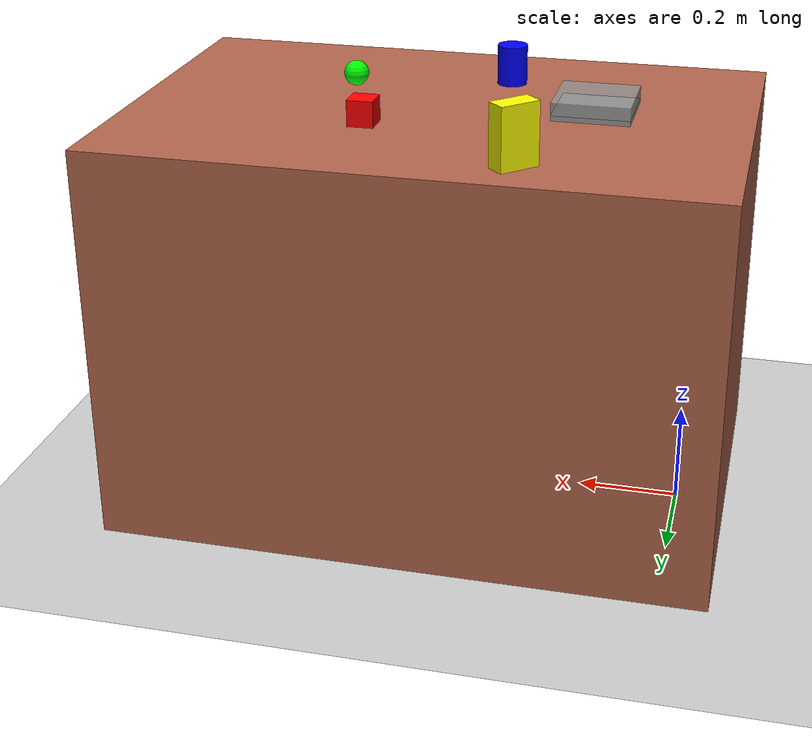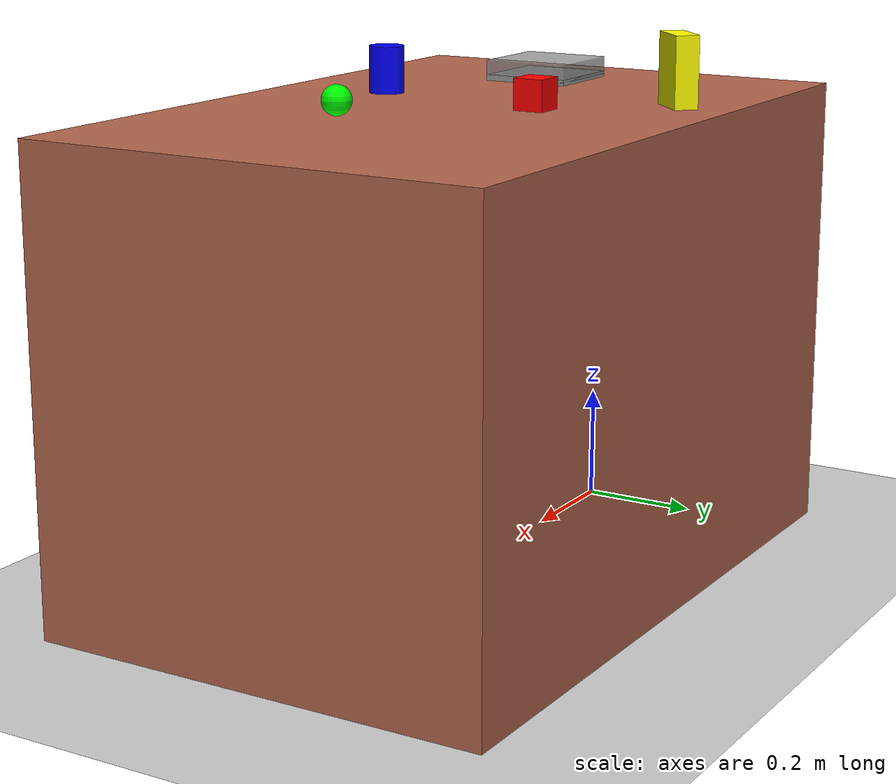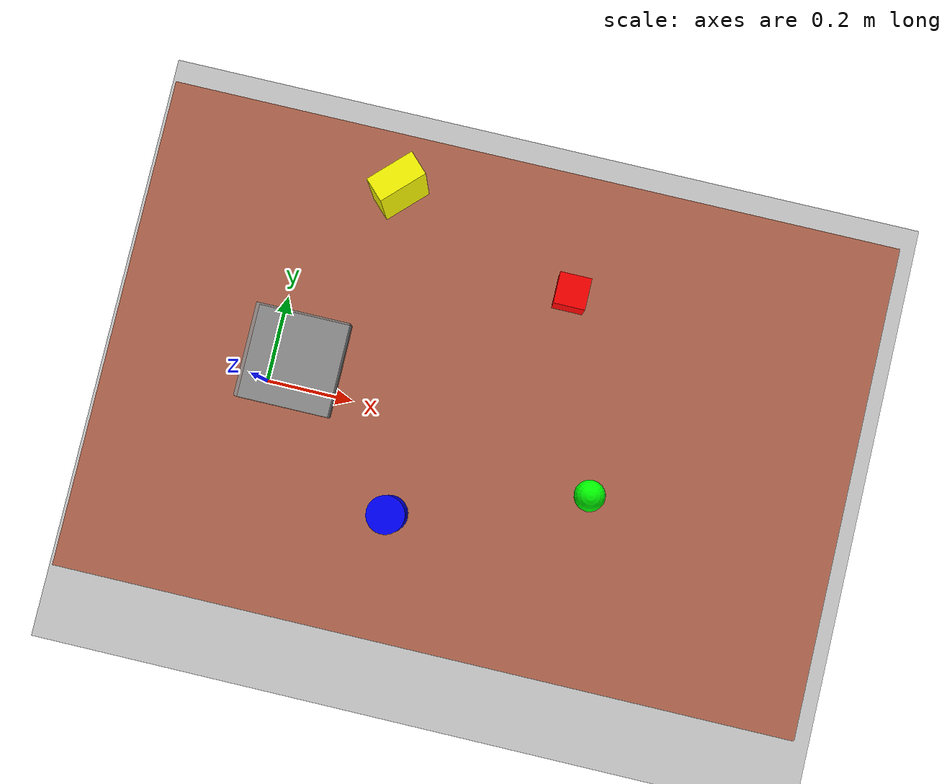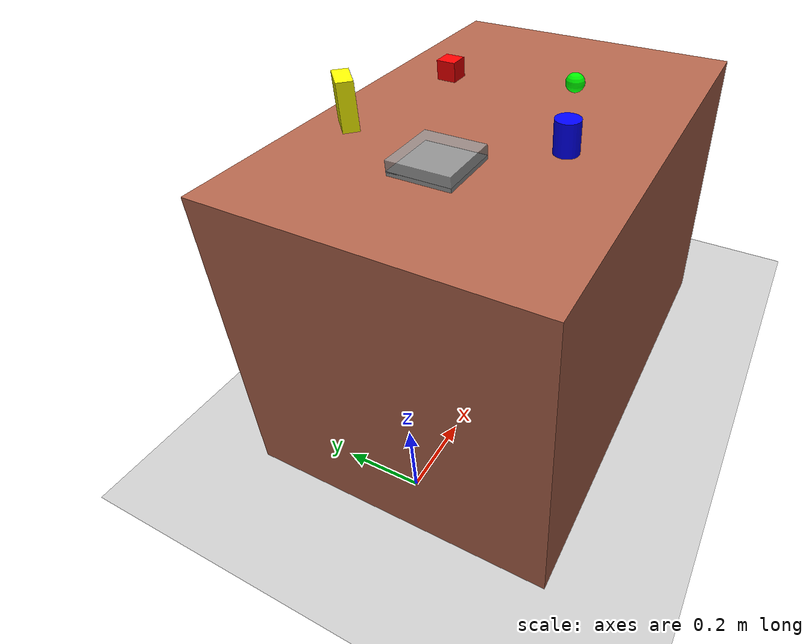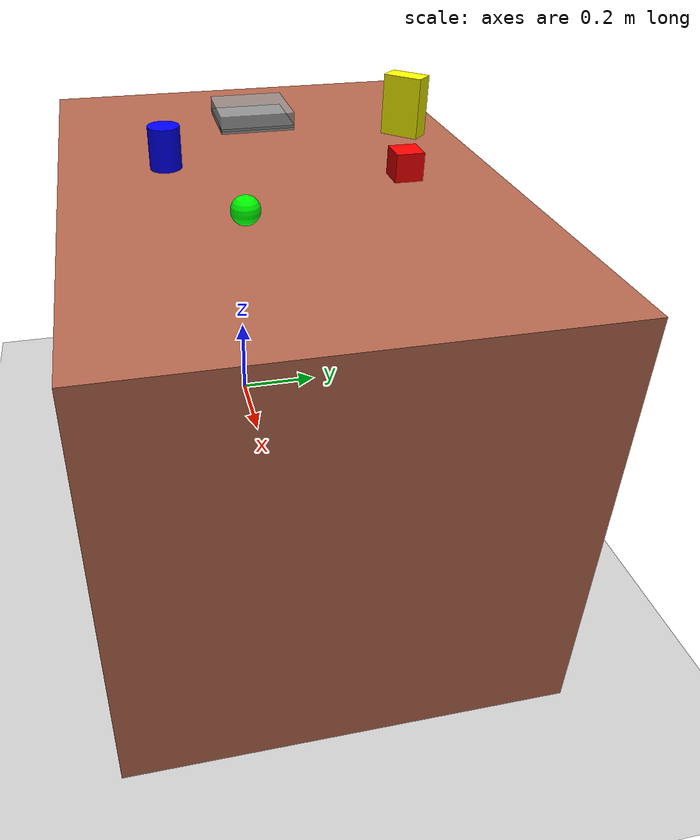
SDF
<?xml version="1.0" ?>
<sdf version="1.9">
  <world name="arm_workspace">
    <!-- Physics settings -->
    <physics name="1ms" type="ignored">
      <max_step_size>0.001</max_step_size>
      <real_time_factor>1.0</real_time_factor>
    </physics>

    <!-- Scene settings -->
    <scene>
      <ambient>0.4 0.4 0.4 1.0</ambient>
      <background>0.7 0.7 0.7 1.0</background>
      <shadows>true</shadows>
    </scene>

    <!-- Sun light -->
    <light name="sun" type="directional">
      <pose>0 0 10 0 0 0</pose>
      <cast_shadows>true</cast_shadows>
      <intensity>1.0</intensity>
      <direction>-0.5 0.1 -0.9</direction>
      <diffuse>0.8 0.8 0.8 1</diffuse>
      <specular>0.2 0.2 0.2 1</specular>
    </light>

    <!-- Ground plane -->
    <model name="ground_plane">
      <static>true</static>
      <link name="link">
        <collision name="collision">
          <geometry>
            <plane>
              <normal>0 0 1</normal>
              <size>100 100</size>
            </plane>
          </geometry>
        </collision>
        <visual name="visual">
          <geometry>
            <plane>
              <normal>0 0 1</normal>
              <size>100 100</size>
            </plane>
          </geometry>
          <material>
            <ambient>0.8 0.8 0.8 1</ambient>
            <diffuse>0.8 0.8 0.8 1</diffuse>
            <specular>0.8 0.8 0.8 1</specular>
          </material>
        </visual>
      </link>
    </model>

    <!-- Work table -->
    <model name="work_table">
      <pose>0.5 0 0.4 0 0 0</pose>
      <static>true</static>
      <link name="link">
        <collision name="collision">
          <geometry>
            <box>
              <size>1.2 0.8 0.8</size>
            </box>
          </geometry>
        </collision>
        <visual name="visual">
          <geometry>
            <box>
              <size>1.2 0.8 0.8</size>
            </box>
          </geometry>
          <material>
            <ambient>0.5 0.3 0.2 1</ambient>
            <diffuse>0.7 0.4 0.3 1</diffuse>
          </material>
        </visual>
      </link>
    </model>

    <!-- Red box target object -->
    <model name="red_box">
      <pose>0.6 0.2 0.85 0 0 0</pose>
      <link name="link">
        <inertial>
          <mass>0.1</mass>
          <inertia>
            <ixx>0.0001</ixx>
            <iyy>0.0001</iyy>
            <izz>0.0001</izz>
          </inertia>
        </inertial>
        <collision name="collision">
          <geometry>
            <box>
              <size>0.05 0.05 0.05</size>
            </box>
          </geometry>
        </collision>
        <visual name="visual">
          <geometry>
            <box>
              <size>0.05 0.05 0.05</size>
            </box>
          </geometry>
          <material>
            <ambient>0.8 0.0 0.0 1</ambient>
            <diffuse>1.0 0.0 0.0 1</diffuse>
          </material>
        </visual>
      </link>
    </model>

    <!-- Blue cylinder target object -->
    <model name="blue_cylinder">
      <pose>0.4 -0.2 0.84 0 0 0</pose>
      <link name="link">
        <inertial>
          <mass>0.15</mass>
          <inertia>
            <ixx>0.0002</ixx>
            <iyy>0.0002</iyy>
            <izz>0.0001</izz>
          </inertia>
        </inertial>
        <collision name="collision">
          <geometry>
            <cylinder>
              <radius>0.03</radius>
              <length>0.08</length>
            </cylinder>
          </geometry>
        </collision>
        <visual name="visual">
          <geometry>
            <cylinder>
              <radius>0.03</radius>
              <length>0.08</length>
            </cylinder>
          </geometry>
          <material>
            <ambient>0.0 0.0 0.8 1</ambient>
            <diffuse>0.0 0.0 1.0 1</diffuse>
          </material>
        </visual>
      </link>
    </model>

    <!-- Green sphere target object -->
    <model name="green_sphere">
      <pose>0.7 -0.1 0.83 0 0 0</pose>
      <link name="link">
        <inertial>
          <mass>0.08</mass>
          <inertia>
            <ixx>0.00008</ixx>
            <iyy>0.00008</iyy>
            <izz>0.00008</izz>
          </inertia>
        </inertial>
        <collision name="collision">
          <geometry>
            <sphere>
              <radius>0.025</radius>
            </sphere>
          </geometry>
        </collision>
        <visual name="visual">
          <geometry>
            <sphere>
              <radius>0.025</radius>
            </sphere>
          </geometry>
          <material>
            <ambient>0.0 0.8 0.0 1</ambient>
            <diffuse>0.0 1.0 0.0 1</diffuse>
          </material>
        </visual>
      </link>
    </model>

    <!-- Yellow box obstacle -->
    <model name="yellow_obstacle">
      <pose>0.3 0.3 0.86 0 0 0.785</pose>
      <link name="link">
        <inertial>
          <mass>0.2</mass>
          <inertia>
            <ixx>0.0003</ixx>
            <iyy>0.0003</iyy>
            <izz>0.0001</izz>
          </inertia>
        </inertial>
        <collision name="collision">
          <geometry>
            <box>
              <size>0.08 0.04 0.12</size>
            </box>
          </geometry>
        </collision>
        <visual name="visual">
          <geometry>
            <box>
              <size>0.08 0.04 0.12</size>
            </box>
          </geometry>
          <material>
            <ambient>0.8 0.8 0.0 1</ambient>
            <diffuse>1.0 1.0 0.0 1</diffuse>
          </material>
        </visual>
      </link>
    </model>

    <!-- Container/tray for objects -->
    <model name="container_tray">
      <pose>0.2 0 0.82 0 0 0</pose>
      <static>true</static>
      <link name="link">
        <collision name="bottom">
          <pose>0 0 0 0 0 0</pose>
          <geometry>
            <box>
              <size>0.15 0.15 0.01</size>
            </box>
          </geometry>
        </collision>
        <collision name="wall1">
          <pose>0.07 0 0.015 0 0 0</pose>
          <geometry>
            <box>
              <size>0.01 0.15 0.03</size>
            </box>
          </geometry>
        </collision>
        <collision name="wall2">
          <pose>-0.07 0 0.015 0 0 0</pose>
          <geometry>
            <box>
              <size>0.01 0.15 0.03</size>
            </box>
          </geometry>
        </collision>
        <collision name="wall3">
          <pose>0 0.07 0.015 0 0 0</pose>
          <geometry>
            <box>
              <size>0.15 0.01 0.03</size>
            </box>
          </geometry>
        </collision>
        <collision name="wall4">
          <pose>0 -0.07 0.015 0 0 0</pose>
          <geometry>
            <box>
              <size>0.15 0.01 0.03</size>
            </box>
          </geometry>
        </collision>
        <visual name="bottom">
          <pose>0 0 0 0 0 0</pose>
          <geometry>
            <box>
              <size>0.15 0.15 0.01</size>
            </box>
          </geometry>
          <material>
            <ambient>0.4 0.4 0.4 1</ambient>
            <diffuse>0.6 0.6 0.6 1</diffuse>
          </material>
        </visual>
        <visual name="walls">
          <pose>0 0 0.015 0 0 0</pose>
          <geometry>
            <box>
              <size>0.15 0.15 0.03</size>
            </box>
          </geometry>
          <material>
            <ambient>0.4 0.4 0.4 0.8</ambient>
            <diffuse>0.6 0.6 0.6 0.8</diffuse>
          </material>
        </visual>
      </link>
    </model>

    <!-- Plugin for Gazebo ROS integration -->
    <plugin filename="libgazebo_ros_init.so" name="gazebo_ros_init"/>
    <plugin filename="libgazebo_ros_factory.so" name="gazebo_ros_factory"/>

  </world>
</sdf>
